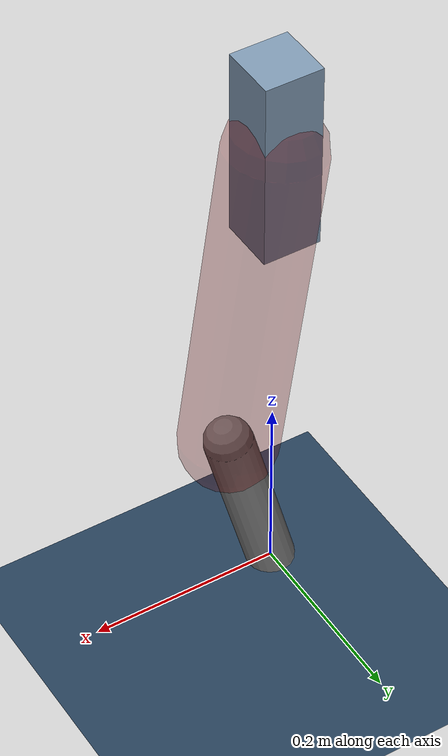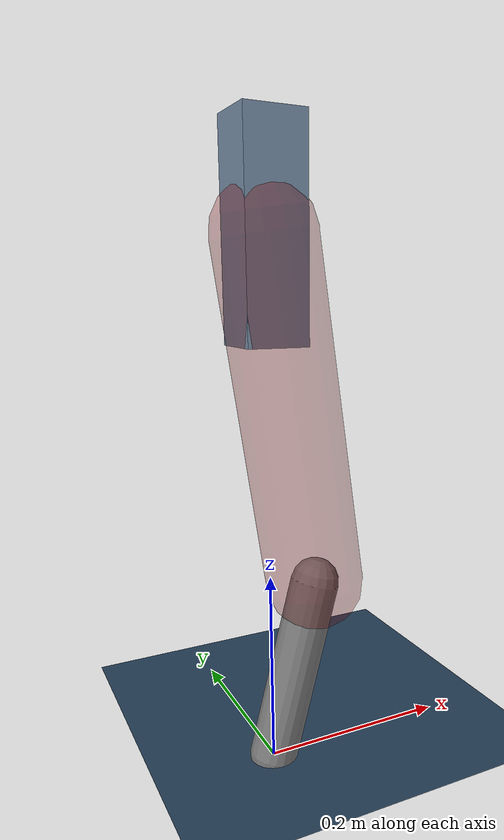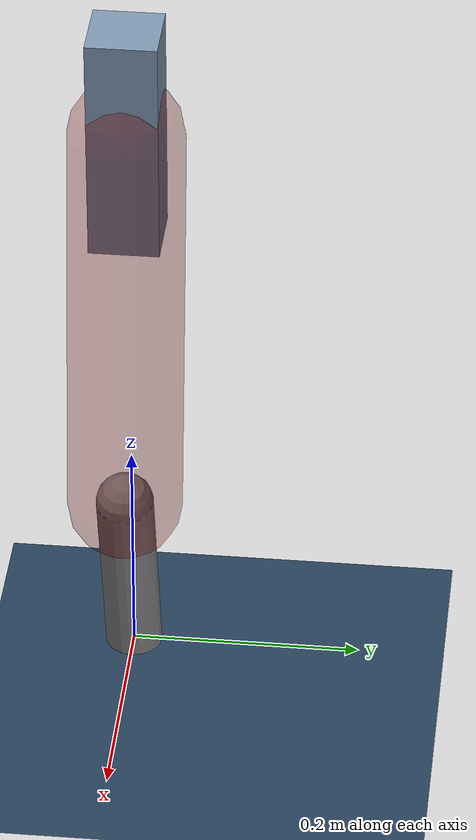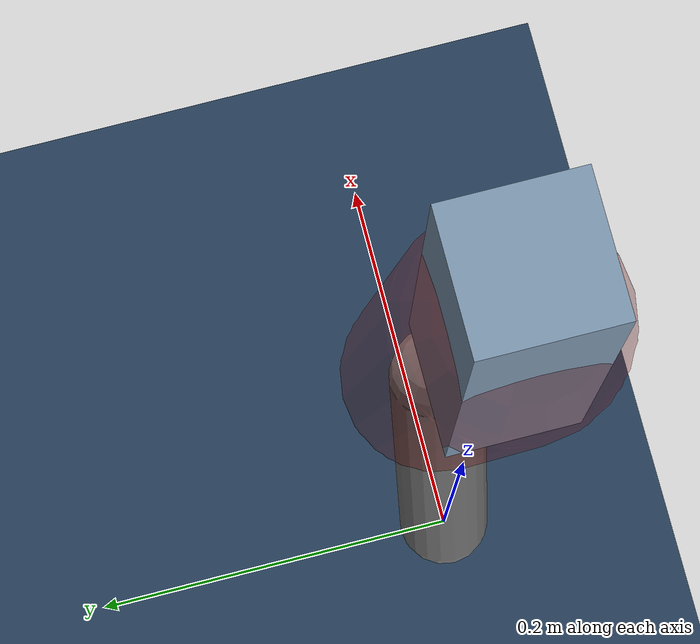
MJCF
<mujoco model="Hopper2D">
	<compiler inertiafromgeom="true" angle="radian" />
	<option timestep="0.001" integrator="implicit" cone="elliptic" solver="Newton" tolerance="1e-10" />

	<default>
		<geom contype="1" conaffinity="1" condim="3" friction="2 0.005 0.0001" solref="0.005 1" />
		<joint limited="true" damping="0.1" />
	</default>

	<asset>
		<texture name="skybox" type="skybox" builtin="gradient" rgb1=".4 .6 .8" rgb2="0 0 0" width="800" height="800" />
		<texture name="grid" type="2d" builtin="checker" rgb1=".1 .2 .3" rgb2=".2 .3 .4" width="300" height="300" mark="edge" markrgb=".2 .3 .4" />
		<material name="ground" texture="grid" texrepeat="1 1" texuniform="true" reflectance="0.1" />
		<material name="leg" rgba="0.5 0.6 0.7 1" />
	</asset>

	<worldbody>

		<geom name="floor" type="plane" size="5 5 0.25" material="ground" />

		<light directional="false" diffuse="0.8 0.8 0.8" specular="0.3 0.3 0.3" pos="0 0 2" dir="0 0 -1" />
		<light mode="targetbodycom" target="base" directional="false" diffuse="0.8 0.8 0.8" specular="0.3 0.3 0.3" pos="0 0 2" dir="0 0 -1" />

		<camera name="fixed" pos="0 -2 1" xyaxes="1 0 0 0 0 1" />
		<camera name="tracking" mode="trackcom" pos="0 -3 1" />

		<body name="root" pos="0 0 0.5290549271589495">
			<joint name="slide_x" type="slide" axis="1 0 0" range="-100 100" />
			<joint name="slide_z" type="slide" axis="0 0 1" range="0 10" />

			<body name="base" pos="0 0 0">
				<geom name="torso" type="box" size="0.03 0.03 0.1" mass="1.669" material="leg" />

				<body name="link1" pos="0 0 0" euler="0 1.4267772349861283 0">
					<joint type="hinge" axis="0 -1 0" pos="0 0 0" name="hinge1" limited="true" range="-3.14 3.14" stiffness="0" damping="0.1" />
					<geom name="thigh" type="capsule" fromto="0 0 0 0.3450587109592223 0 0" size="0.05" rgba="0.5 0 0 0.3" mass="1.1127643906858224" />

					<body name="link2" pos="0.3450587109592223 0 0" euler="0 0.4021567765885076 0">
						<joint type="hinge" axis="0 -1 0" pos="0 0 0" name="hinge2" limited="true" range="-3.14 3.14" stiffness="0" damping="0.1" />
						<geom name="shank" type="capsule" fromto="0 0 0 0.1939962161997273 0 0" size="0.025" mass="0.39579697295978183" />

					</body>
				</body>
			</body>
		</body>
	</worldbody>

	<actuator>
		<motor name="torque1" joint="hinge1" ctrlrange="-36.98434936945315 36.98434936945315" ctrllimited="true" gear="1" />
		<motor name="torque2" joint="hinge2" ctrlrange="-19.390996736935595 19.390996736935595" ctrllimited="true" gear="1" />
	</actuator>
</mujoco>
